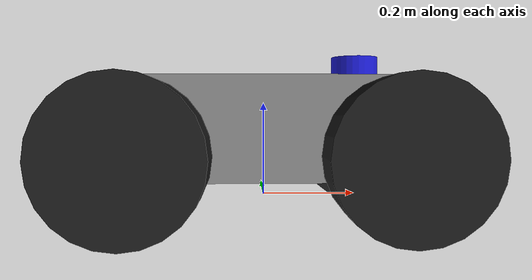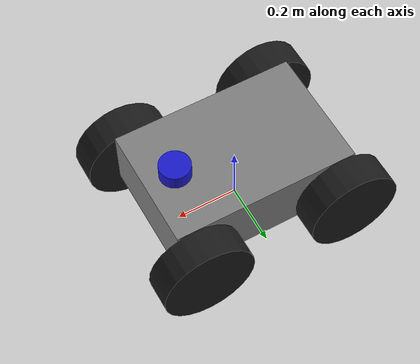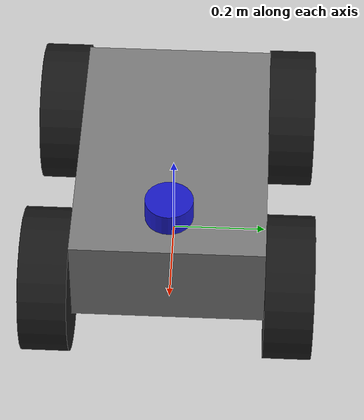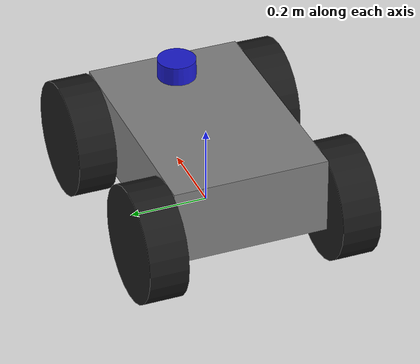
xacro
<?xml version="1.0"?>
<robot name="chasmata" xmlns:xacro="http://ros.org/wiki/xacro">

  <!-- Base footprint (projection on ground) -->
  <link name="base_footprint"/>

  <!-- Base link (center of the rover body) -->
  <link name="base_link">
    <visual>
      <geometry>
        <box size="0.6 0.4 0.2"/>
      </geometry>
      <material name="grey">
        <color rgba="0.5 0.5 0.5 1"/>
      </material>
    </visual>
    <collision>
      <geometry>
        <box size="0.6 0.4 0.2"/>
      </geometry>
    </collision>
    <inertial>
      <mass value="20.0"/>
      <inertia ixx="0.33" ixy="0" ixz="0" iyy="0.63" iyz="0" izz="0.83"/>
    </inertial>
  </link>

  <joint name="base_joint" type="fixed">
    <parent link="base_footprint"/>
    <child link="base_link"/>
    <origin xyz="0 0 0.15" rpy="0 0 0"/>
  </joint>

  <!-- Macro for wheels -->
  <xacro:macro name="wheel" params="prefix x_offset y_offset">
    <link name="${prefix}_wheel">
      <visual>
        <geometry>
          <cylinder radius="0.15" length="0.1"/>
        </geometry>
        <material name="black">
          <color rgba="0.1 0.1 0.1 1"/>
        </material>
      </visual>
      <collision>
        <geometry>
          <cylinder radius="0.15" length="0.1"/>
        </geometry>
      </collision>
      <inertial>
        <mass value="2.0"/>
        <inertia ixx="0.012" ixy="0" ixz="0" iyy="0.012" iyz="0" izz="0.022"/>
      </inertial>
    </link>

    <joint name="${prefix}_wheel_joint" type="continuous">
      <parent link="base_link"/>
      <child link="${prefix}_wheel"/>
      <origin xyz="${x_offset} ${y_offset} -0.05" rpy="1.5708 0 0"/>
      <axis xyz="0 0 -1"/>
    </joint>
  </xacro:macro>

  <!-- 4 Wheels -->
  <xacro:wheel prefix="front_left" x_offset="0.25" y_offset="0.25"/>
  <xacro:wheel prefix="front_right" x_offset="0.25" y_offset="-0.25"/>
  <xacro:wheel prefix="rear_left" x_offset="-0.25" y_offset="0.25"/>
  <xacro:wheel prefix="rear_right" x_offset="-0.25" y_offset="-0.25"/>

  <link name="lidar_link">
    <visual>
      <geometry>
        <cylinder radius="0.05" length="0.05"/>
      </geometry>
      <material name="blue">
        <color rgba="0.1 0.1 0.8 1"/>
      </material>
    </visual>
    <collision>
      <geometry>
        <cylinder radius="0.05" length="0.05"/>
      </geometry>
    </collision>
    <inertial>
      <!-- ~170 g — typical for RPLIDAR A3 -->
      <mass value="0.17"/>
      <inertia ixx="0.000058" ixy="0" ixz="0"
               iyy="0.000058" iyz="0"
               izz="0.000106"/>
    </inertial>
  </link>

  <joint name="lidar_joint" type="fixed">
    <parent link="base_link"/>
    <child link="lidar_link"/>
    <!-- 0.2 m forward, centred laterally, top of rover body -->
    <origin xyz="0.2 0 0.125" rpy="0 0 0"/>
  </joint>

  <!-- IMU Sensor -->
  <link name="imu_link"/>

  <joint name="imu_joint" type="fixed">
    <parent link="base_link"/>
    <child link="imu_link"/>
    <origin xyz="0 0 0" rpy="0 0 0"/>
  </joint>

</robot>
